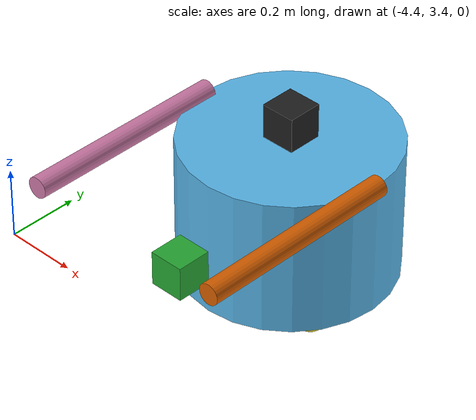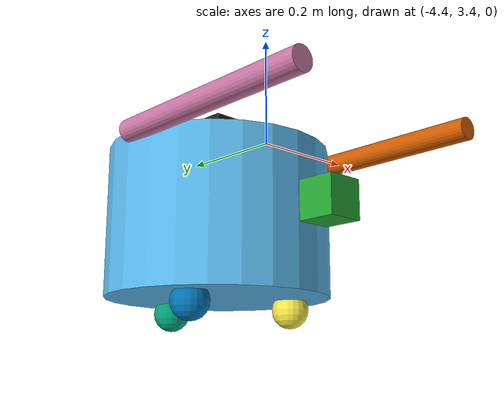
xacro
<?xml version="1.0" encoding="UTF-8"?>
<robot name="armed3w" xmlns:xacro="http://ros.org/wiki/xacro">
  <xacro:include filename="$(find robot_utokyo)/urdf/armed3w.gazebo.xacro"/>

  <xacro:property name="body_height" value="0.4" />
  <xacro:property name="wheel_radius" value="0.05" />
  <xacro:property name="arm_length" value="0.6" />
  <xacro:property name="pi" value="3.1415926" />
  <xacro:property name="sensor_size" value=".1" />

  <link name="base_footprint"/>

  <!-- Robot Body -->
  <joint name="base_link_joint" type="fixed">
    <parent link="base_footprint"/>
    <child link="body"/>
    <origin xyz="-4 4 0"/>
  </joint>

  <link name='body'>
    <inertial>
      <mass value="1"/>
      <!-- #cylinder Izz = 1/2 * M * r^2
      #cylinder Iyy = Ixx = 1/12 * M * l^2 -->
      <inertia ixx=".0675"  ixy="0"  ixz="0" iyy=".0675" iyz="0" izz=".045"/>
    </inertial>
    <collision>
      <origin xyz="0 0 0" rpy="0 0 0"/>
      <geometry>
        <cylinder radius=".3" length="${body_height}"/>
      </geometry>
    </collision>
    <visual>
      <origin xyz="0 0 0" rpy="0 0 0"/>
      <geometry>
        <cylinder radius=".3" length="${body_height}"/>
      </geometry>
    </visual>
  </link>

  <joint name="body_wheelFront" type="fixed">
    <parent link="body"/>
    <child link="wheelFront"/>
    <origin xyz="0 .2 ${- body_height / 2 - wheel_radius / 2}" rpy="0 0 0"/>
  </joint>

  <link name='wheelFront'>
    <inertial>
      <mass value=".2"/>
      <!-- # sphere: I = 2/5 * M * a^2 -->
      <inertia ixx=".0002"  ixy="0"  ixz="0" iyy=".0002" iyz="0" izz=".0002"/>
    </inertial>
    <collision>
      <origin xyz="0 0 0" rpy="0 0 0"/>
      <geometry>
        <sphere radius="${wheel_radius}"/>
      </geometry>
    </collision>
    <visual>
      <origin xyz="0 0 0" rpy="0 0 0"/>
      <geometry>
        <sphere radius="${wheel_radius}"/>
      </geometry>
    </visual>
  </link>

  <joint name="body_wheelRight" type="continuous">
    <parent link="body"/>
    <child link="wheelRight"/>
    <origin xyz="0.1732 -.1 ${- body_height / 2 - wheel_radius / 2}" rpy="0 0 0"/>
    <axis xyz="1 0 0"/>
  </joint>

  <link name='wheelRight'>
    <inertial>
      <mass value=".2"/>
      <!-- # sphere: I = 2/5 * M * r^2 -->
      <inertia ixx=".0002"  ixy="0.0"  ixz="0.0" iyy=".0002" iyz="0.0" izz=".0002"/>
    </inertial>
    <collision>
      <origin xyz="0 0 0" rpy="0 0 0"/>
      <geometry>
        <sphere radius="${wheel_radius}"/>
      </geometry>
    </collision>
    <visual>
      <origin xyz="0 0 0" rpy="0 0 0"/>
      <geometry>
        <sphere radius="${wheel_radius}"/>
      </geometry>
    </visual>
  </link>

  <joint name="body_wheelLeft" type="continuous">
    <parent link="body"/>
    <child link="wheelLeft"/>
    <origin xyz="-0.1732 -.1 ${- body_height / 2 - wheel_radius / 2}" rpy="0 0 0"/>
    <axis xyz="1 0 0"/>
  </joint>

  <link name='wheelLeft'>
    <inertial>
      <mass value=".2"/>
      <!-- # sphere: I = 2/5 * M * r^2 -->
      <inertia ixx=".0002"  ixy="0.0"  ixz="0.0" iyy=".0002" iyz="0.0" izz=".0002"/>
    </inertial>
    <collision>
      <origin xyz="0 0 0" rpy="0 0 0"/>
      <geometry>
        <sphere radius="${wheel_radius}"/>
      </geometry>
    </collision>
    <visual>
      <origin xyz="0 0 0" rpy="0 0 0"/>
      <geometry>
        <sphere radius="${wheel_radius}"/>
      </geometry>
    </visual>
  </link>

  <joint name="body_armRight" type="continuous">
    <parent link="body"/>
    <child link="armRight"/>
    <origin xyz=".3 0 .2" rpy="${- pi / 2} 0 0"/>
    <axis xyz="1 0 0"/>
  </joint>

  <link name='armRight'>
    <inertial>
      <mass value=".1"/>
      <!-- #cylinder Izz = 1/2 * M * r^2 -->
      <!-- #cylinder Iyy = Ixx = 1/12 * M * l^2 -->
      <inertia ixx=".003"  ixy="0"  ixz="0" iyy=".003" iyz="0" izz=".000045"/>
    </inertial>
    <collision>
      <origin xyz="0 0 -.3" rpy="0 0 0"/>
      <geometry>
        <cylinder radius=".03" length="${arm_length}"/>
      </geometry>
    </collision>
    <visual>
      <origin xyz="0 0 -.3" rpy="0 0 0"/>
      <geometry>
        <cylinder radius=".03" length="${arm_length}"/>
      </geometry>
    </visual>
  </link>

  <joint name="body_armLeft" type="continuous">
    <parent link="body"/>
    <child link="armLeft"/>
    <origin xyz="-.3 0 .2" rpy="${- pi / 2} 0 0"/>
    <axis xyz="1 0 0"/>
  </joint>

  <link name='armLeft'>
      <inertial>
        <mass value=".1"/>
      <!-- #cylinder Izz = 1/2 * M * r^2
      #cylinder Iyy = Ixx = 1/12 * M * l^2 -->
      <inertia ixx=".003"  ixy="0"  ixz="0" iyy=".003" iyz="0" izz=".000045"/>
      </inertial>
      <collision>
        <origin xyz="0 0 -.3" rpy="0 0 0"/>
        <geometry>
          <cylinder radius=".03" length="${arm_length}"/>
        </geometry>
      </collision>
      <visual>
        <origin xyz="0 0 -.3" rpy="0 0 0"/>
        <geometry>
          <cylinder radius=".03" length="${arm_length}"/>
        </geometry>
      </visual>
    </link>

  <!-- controller start-->
  <transmission name="body_wheelRight_trans">
    <type>transmission_interface/SimpleTransmission</type>
    <joint name="body_wheelRight">
      <hardwareInterface>hardware_interface/VelocityJointInterface</hardwareInterface>
    </joint>
    <actuator name="body_wheelRight_motor">
      <hardwareInterface>VelocityJointInterface</hardwareInterface>
      <mechanicalReduction>30</mechanicalReduction>
    </actuator>
  </transmission>

  <transmission name="body_wheelLeft_trans">
    <type>transmission_interface/SimpleTransmission</type>
    <joint name="body_wheelLeft">
      <hardwareInterface>hardware_interface/VelocityJointInterface</hardwareInterface>
    </joint>
    <actuator name="body_wheelLeft_motor">
      <hardwareInterface>VelocityJointInterface</hardwareInterface>
      <mechanicalReduction>30</mechanicalReduction>
    </actuator>
  </transmission>

  <transmission name="body_armRight_trans">
    <type>transmission_interface/SimpleTransmission</type>
    <joint name="body_armRight">
      <hardwareInterface>hardware_interface/VelocityJointInterface</hardwareInterface>
    </joint>
    <actuator name="body_armRight_motor">
      <hardwareInterface>VelocityJointInterface</hardwareInterface>
      <mechanicalReduction>30</mechanicalReduction>
    </actuator>
  </transmission>

  <transmission name="body_armLeft_trans">
    <type>transmission_interface/SimpleTransmission</type>
    <joint name="body_armLeft">
      <hardwareInterface>hardware_interface/VelocityJointInterface</hardwareInterface>
    </joint>
    <actuator name="body_armLeft_motor">
      <hardwareInterface>VelocityJointInterface</hardwareInterface>
      <mechanicalReduction>30</mechanicalReduction>
    </actuator>
  </transmission>
  <!-- controller end-->

  <joint name="camera_joint" type="fixed">
    <origin xyz="0 -.4 0" rpy="0 0 0"/>
    <parent link="body"/>
    <child link="camera"/>
  </joint>

  <link name="camera">
    <collision>
      <origin xyz="0 0 0" rpy="0 0 0"/>
      <geometry>
        <box size="${sensor_size} ${sensor_size} ${sensor_size}"/>
      </geometry>
    </collision>

    <visual>
      <origin xyz="0 0 0" rpy="0 0 0"/>
      <geometry>
        <box size="${sensor_size} ${sensor_size} ${sensor_size}"/>
      </geometry>
      <material name="green"/>
    </visual>

    <inertial>
      <mass value=".01" />
      <origin xyz="0 0 0" rpy="0 0 0"/>
      <box_inertia m=".01" x=".1" y=".1" z=".1" />
      <inertia ixx="1e-6" ixy="0" ixz="0" iyy="1e-6" iyz="0" izz="1e-6" />
    </inertial>
  </link>

  <joint name="hokuyo_joint" type="fixed">
    <origin xyz="0 0 ${body_height / 2 + sensor_size / 2}" rpy="0 0 -1.570796"/>
    <parent link="body"/>
    <child link="hokuyo"/>
  </joint>

  <!-- Hokuyo Laser -->
  <link name="hokuyo">
    <collision>
      <origin xyz="0 0 0" rpy="0 0 0"/>
      <geometry>
        <box size="${sensor_size} ${sensor_size} ${sensor_size}"/>
      </geometry>
    </collision>

    <visual>
      <origin xyz="0 0 0" rpy="0 0 0"/>
      <geometry>
        <box size="${sensor_size} ${sensor_size} ${sensor_size}"/>
      </geometry>
    </visual>

    <inertial>
      <mass value="1e-5" />
      <origin xyz="0 0 0" rpy="0 0 0"/>
      <inertia ixx="1e-6" ixy="0" ixz="0" iyy="1e-6" iyz="0" izz="1e-6" />
    </inertial>
  </link>

</robot>
